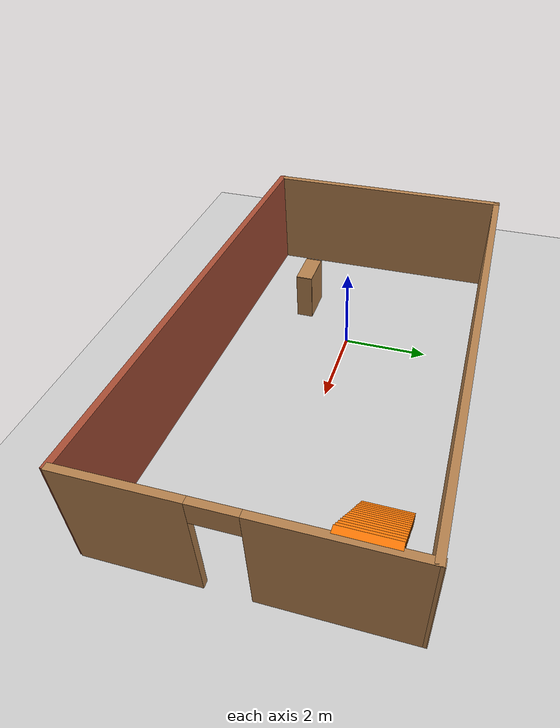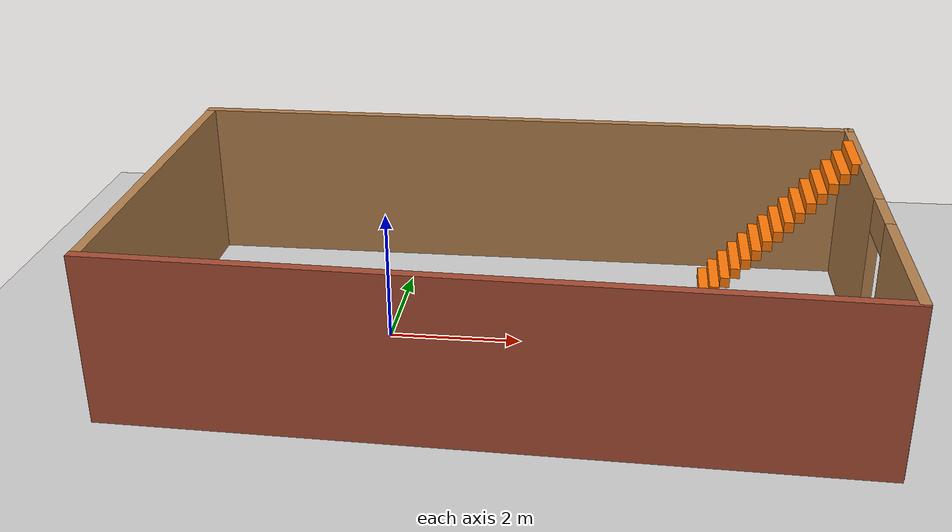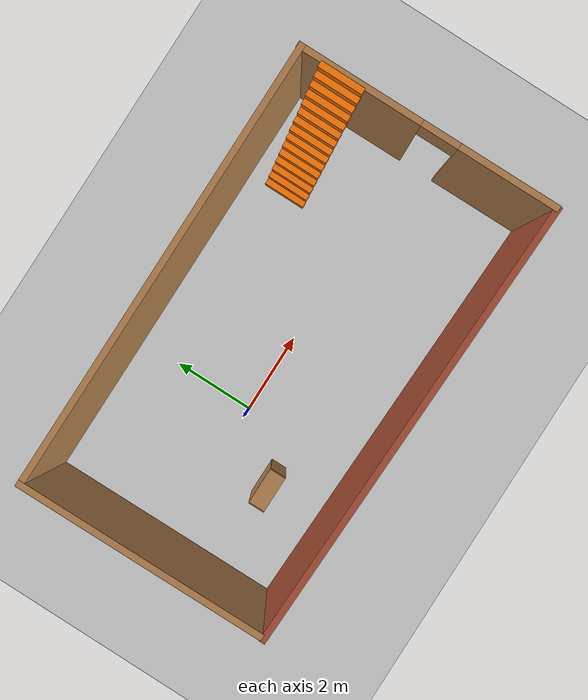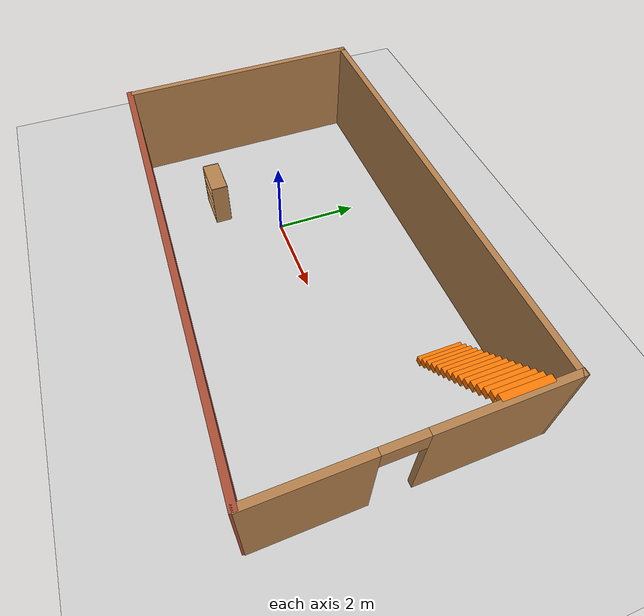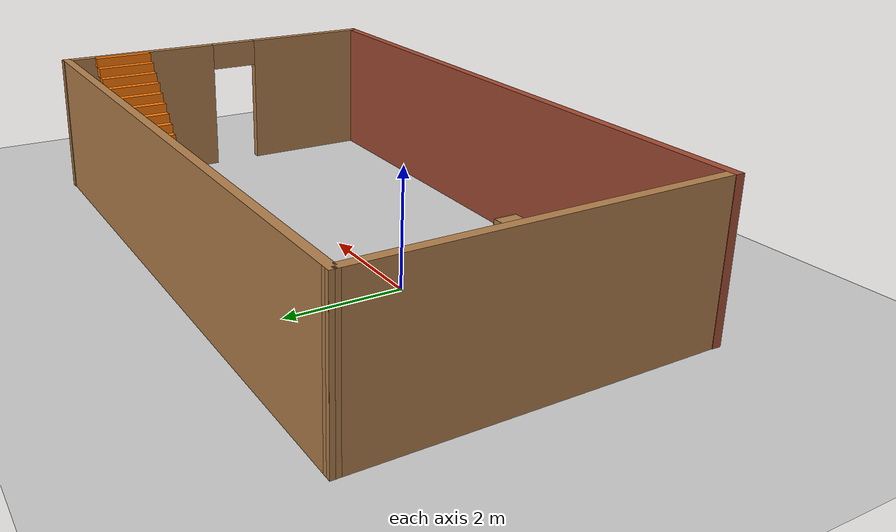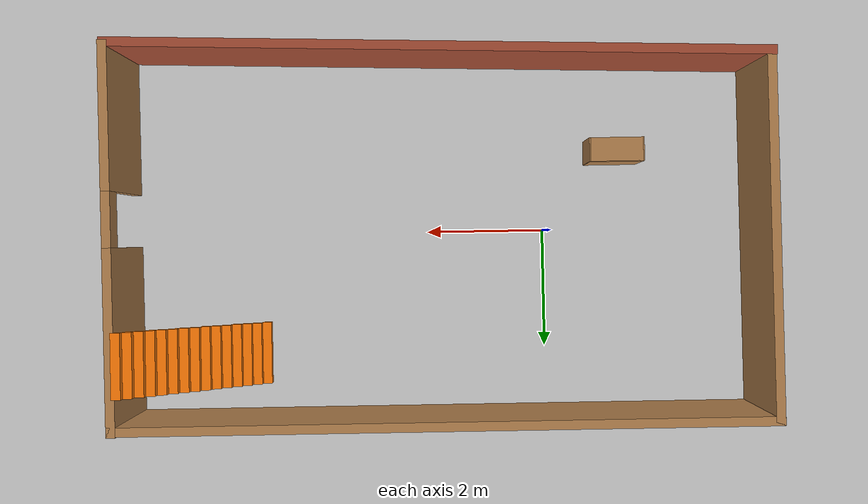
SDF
<sdf version="1.7">
 <world name="default">
  <light name="sun" type="directional">
   <pose>0 0 10 0 -0 0</pose>
   <diffuse>0.8 0.8 0.8 1</diffuse>
   <specular>0.2 0.2 0.2 1</specular>
   <attenuation>
    <range>1000</range>
    <constant>0.9</constant>
    <linear>0.01</linear>
    <quadratic>0.001</quadratic>
   </attenuation>
   <direction>-0.5 0.1 -0.9</direction>
   <spot><inner_angle>0</inner_angle><outer_angle>0</outer_angle><falloff>0</falloff></spot>
  </light>
  <model name="ground_plane">
   <static>1</static>
   <link name="link">
    <collision name="collision">
     <geometry><plane><normal>0 0 1</normal><size>100 100</size></plane></geometry>
     <surface>
      <contact><collide_bitmask>65535</collide_bitmask></contact>
      <friction><ode><mu>100</mu><mu2>50</mu2></ode></friction>
     </surface>
    </collision>
    <visual name="visual">
     <cast_shadows>0</cast_shadows>
     <geometry><plane><normal>0 0 1</normal><size>100 100</size></plane></geometry>
     <material>
      <script><uri>file://media/materials/scripts/gazebo.material</uri><name>Gazebo/Grey</name></script>
     </material>
    </visual>
   </link>
  </model>
  <gravity>0 0 -9.8</gravity>
  <magnetic_field>6e-06 2.3e-05 -4.2e-05</magnetic_field>
  <atmosphere type="adiabatic"/>
  <physics type="ode">
   <max_step_size>0.001</max_step_size>
   <real_time_factor>1</real_time_factor>
   <real_time_update_rate>1000</real_time_update_rate>
  </physics>
  <scene><ambient>0.4 0.4 0.4 1</ambient><background>0.7 0.7 0.7 1</background><shadows>1</shadows></scene>
  <audio><device>default</device></audio>
  <spherical_coordinates>
   <surface_model>EARTH_WGS84</surface_model>
   <latitude_deg>0</latitude_deg>
   <longitude_deg>0</longitude_deg>
   <elevation>0</elevation>
   <heading_deg>0</heading_deg>
  </spherical_coordinates>
  <model name="wall_test">
   <pose>1.76985 0.000121 0 0 -0 0</pose>
   <link name="Stairs_1">
    <visual name="Stairs_1_Visual_0">
     <pose>3.05585 2.04722 0.083333 0 -0 1.5708</pose>
     <geometry><box><size>1.06083 0.15222 0.166667</size></box></geometry>
     <material>
      <script><uri>file://media/materials/scripts/gazebo.material</uri><name>Gazebo/Grey</name></script>
      <ambient>0.996078 0.47451 0.0196078 1</ambient>
     </material>
     <meta><layer>0</layer></meta>
    </visual>
    <collision name="Stairs_1_Collision_0">
     <geometry><box><size>1.06083 0.15222 0.166667</size></box></geometry>
     <pose>3.05585 2.04722 0.083333 0 -0 1.5708</pose>
    </collision>
    <visual name="Stairs_1_Visual_1">
     <pose>3.20807 2.04722 0.25 0 -0 1.5708</pose>
     <geometry><box><size>1.06083 0.15222 0.166667</size></box></geometry>
     <material>
      <script><uri>file://media/materials/scripts/gazebo.material</uri><name>Gazebo/Grey</name></script>
      <ambient>0.996078 0.47451 0.0196078 1</ambient>
     </material>
     <meta><layer>0</layer></meta>
    </visual>
    <collision name="Stairs_1_Collision_1">
     <geometry><box><size>1.06083 0.15222 0.166667</size></box></geometry>
     <pose>3.20807 2.04722 0.25 0 -0 1.5708</pose>
    </collision>
    <visual name="Stairs_1_Visual_2">
     <pose>3.36029 2.04722 0.416667 0 -0 1.5708</pose>
     <geometry><box><size>1.06083 0.15222 0.166667</size></box></geometry>
     <material>
      <script><uri>file://media/materials/scripts/gazebo.material</uri><name>Gazebo/Grey</name></script>
      <ambient>0.996078 0.47451 0.0196078 1</ambient>
     </material>
     <meta><layer>0</layer></meta>
    </visual>
    <collision name="Stairs_1_Collision_2">
     <geometry><box><size>1.06083 0.15222 0.166667</size></box></geometry>
     <pose>3.36029 2.04722 0.416667 0 -0 1.5708</pose>
    </collision>
    <visual name="Stairs_1_Visual_3">
     <pose>3.51251 2.04722 0.583333 0 -0 1.5708</pose>
     <geometry><box><size>1.06083 0.15222 0.166667</size></box></geometry>
     <material>
      <script><uri>file://media/materials/scripts/gazebo.material</uri><name>Gazebo/Grey</name></script>
      <ambient>0.996078 0.47451 0.0196078 1</ambient>
     </material>
     <meta><layer>0</layer></meta>
    </visual>
    <collision name="Stairs_1_Collision_3">
     <geometry><box><size>1.06083 0.15222 0.166667</size></box></geometry>
     <pose>3.51251 2.04722 0.583333 0 -0 1.5708</pose>
    </collision>
    <visual name="Stairs_1_Visual_4">
     <pose>3.66473 2.04722 0.75 0 -0 1.5708</pose>
     <geometry><box><size>1.06083 0.15222 0.166667</size></box></geometry>
     <material>
      <script><uri>file://media/materials/scripts/gazebo.material</uri><name>Gazebo/Grey</name></script>
      <ambient>0.996078 0.47451 0.0196078 1</ambient>
     </material>
     <meta><layer>0</layer></meta>
    </visual>
    <collision name="Stairs_1_Collision_4">
     <geometry><box><size>1.06083 0.15222 0.166667</size></box></geometry>
     <pose>3.66473 2.04722 0.75 0 -0 1.5708</pose>
    </collision>
    <visual name="Stairs_1_Visual_5">
     <pose>3.81695 2.04722 0.916667 0 -0 1.5708</pose>
     <geometry><box><size>1.06083 0.15222 0.166667</size></box></geometry>
     <material>
      <script><uri>file://media/materials/scripts/gazebo.material</uri><name>Gazebo/Grey</name></script>
      <ambient>0.996078 0.47451 0.0196078 1</ambient>
     </material>
     <meta><layer>0</layer></meta>
    </visual>
    <collision name="Stairs_1_Collision_5">
     <geometry><box><size>1.06083 0.15222 0.166667</size></box></geometry>
     <pose>3.81695 2.04722 0.916667 0 -0 1.5708</pose>
    </collision>
    <visual name="Stairs_1_Visual_6">
     <pose>3.96917 2.04722 1.08333 0 -0 1.5708</pose>
     <geometry><box><size>1.06083 0.15222 0.166667</size></box></geometry>
     <material>
      <script><uri>file://media/materials/scripts/gazebo.material</uri><name>Gazebo/Grey</name></script>
      <ambient>0.996078 0.47451 0.0196078 1</ambient>
     </material>
     <meta><layer>0</layer></meta>
    </visual>
    <collision name="Stairs_1_Collision_6">
     <geometry><box><size>1.06083 0.15222 0.166667</size></box></geometry>
     <pose>3.96917 2.04722 1.08333 0 -0 1.5708</pose>
    </collision>
    <visual name="Stairs_1_Visual_7">
     <pose>4.12139 2.04722 1.25 0 -0 1.5708</pose>
     <geometry><box><size>1.06083 0.15222 0.166667</size></box></geometry>
     <material>
      <script><uri>file://media/materials/scripts/gazebo.material</uri><name>Gazebo/Grey</name></script>
      <ambient>0.996078 0.47451 0.0196078 1</ambient>
     </material>
     <meta><layer>0</layer></meta>
    </visual>
    <collision name="Stairs_1_Collision_7">
     <geometry><box><size>1.06083 0.15222 0.166667</size></box></geometry>
     <pose>4.12139 2.04722 1.25 0 -0 1.5708</pose>
    </collision>
    <visual name="Stairs_1_Visual_8">
     <pose>4.27361 2.04722 1.41667 0 -0 1.5708</pose>
     <geometry><box><size>1.06083 0.15222 0.166667</size></box></geometry>
     <material>
      <script><uri>file://media/materials/scripts/gazebo.material</uri><name>Gazebo/Grey</name></script>
      <ambient>0.996078 0.47451 0.0196078 1</ambient>
     </material>
     <meta><layer>0</layer></meta>
    </visual>
    <collision name="Stairs_1_Collision_8">
     <geometry><box><size>1.06083 0.15222 0.166667</size></box></geometry>
     <pose>4.27361 2.04722 1.41667 0 -0 1.5708</pose>
    </collision>
    <visual name="Stairs_1_Visual_9">
     <pose>4.42583 2.04722 1.58333 0 -0 1.5708</pose>
     <geometry><box><size>1.06083 0.15222 0.166667</size></box></geometry>
     <material>
      <script><uri>file://media/materials/scripts/gazebo.material</uri><name>Gazebo/Grey</name></script>
      <ambient>0.996078 0.47451 0.0196078 1</ambient>
     </material>
     <meta><layer>0</layer></meta>
    </visual>
    <collision name="Stairs_1_Collision_9">
     <geometry><box><size>1.06083 0.15222 0.166667</size></box></geometry>
     <pose>4.42583 2.04722 1.58333 0 -0 1.5708</pose>
    </collision>
    <visual name="Stairs_1_Visual_10">
     <pose>4.57805 2.04722 1.75 0 -0 1.5708</pose>
     <geometry><box><size>1.06083 0.15222 0.166667</size></box></geometry>
     <material>
      <script><uri>file://media/materials/scripts/gazebo.material</uri><name>Gazebo/Grey</name></script>
      <ambient>0.996078 0.47451 0.0196078 1</ambient>
     </material>
     <meta><layer>0</layer></meta>
    </visual>
    <collision name="Stairs_1_Collision_10">
     <geometry><box><size>1.06083 0.15222 0.166667</size></box></geometry>
     <pose>4.57805 2.04722 1.75 0 -0 1.5708</pose>
    </collision>
    <visual name="Stairs_1_Visual_11">
     <pose>4.73027 2.04722 1.91667 0 -0 1.5708</pose>
     <geometry><box><size>1.06083 0.15222 0.166667</size></box></geometry>
     <material>
      <script><uri>file://media/materials/scripts/gazebo.material</uri><name>Gazebo/Grey</name></script>
      <ambient>0.996078 0.47451 0.0196078 1</ambient>
     </material>
     <meta><layer>0</layer></meta>
    </visual>
    <collision name="Stairs_1_Collision_11">
     <geometry><box><size>1.06083 0.15222 0.166667</size></box></geometry>
     <pose>4.73027 2.04722 1.91667 0 -0 1.5708</pose>
    </collision>
    <visual name="Stairs_1_Visual_12">
     <pose>4.88249 2.04722 2.08333 0 -0 1.5708</pose>
     <geometry><box><size>1.06083 0.15222 0.166667</size></box></geometry>
     <material>
      <script><uri>file://media/materials/scripts/gazebo.material</uri><name>Gazebo/Grey</name></script>
      <ambient>0.996078 0.47451 0.0196078 1</ambient>
     </material>
     <meta><layer>0</layer></meta>
    </visual>
    <collision name="Stairs_1_Collision_12">
     <geometry><box><size>1.06083 0.15222 0.166667</size></box></geometry>
     <pose>4.88249 2.04722 2.08333 0 -0 1.5708</pose>
    </collision>
    <visual name="Stairs_1_Visual_13">
     <pose>5.03471 2.04722 2.25 0 -0 1.5708</pose>
     <geometry><box><size>1.06083 0.15222 0.166667</size></box></geometry>
     <material>
      <script><uri>file://media/materials/scripts/gazebo.material</uri><name>Gazebo/Grey</name></script>
      <ambient>0.996078 0.47451 0.0196078 1</ambient>
     </material>
     <meta><layer>0</layer></meta>
    </visual>
    <collision name="Stairs_1_Collision_13">
     <geometry><box><size>1.06083 0.15222 0.166667</size></box></geometry>
     <pose>5.03471 2.04722 2.25 0 -0 1.5708</pose>
    </collision>
    <visual name="Stairs_1_Visual_14">
     <pose>5.18693 2.04722 2.41667 0 -0 1.5708</pose>
     <geometry><box><size>1.06083 0.15222 0.166667</size></box></geometry>
     <material>
      <script><uri>file://media/materials/scripts/gazebo.material</uri><name>Gazebo/Grey</name></script>
      <ambient>0.996078 0.47451 0.0196078 1</ambient>
     </material>
     <meta><layer>0</layer></meta>
    </visual>
    <collision name="Stairs_1_Collision_14">
     <geometry><box><size>1.06083 0.15222 0.166667</size></box></geometry>
     <pose>5.18693 2.04722 2.41667 0 -0 1.5708</pose>
    </collision>
   </link>
   <link name="Wall_0">
    <collision name="Wall_0_Collision">
     <geometry><box><size>5.91706 0.15 2.5</size></box></geometry>
     <pose>0 0 1.25 0 -0 0</pose>
    </collision>
    <visual name="Wall_0_Visual">
     <pose>0 0 1.25 0 -0 0</pose>
     <geometry><box><size>5.91706 0.15 2.5</size></box></geometry>
     <material>
      <script><uri>file://media/materials/scripts/gazebo.material</uri><name>Gazebo/Wood</name></script>
      <ambient>1 1 1 1</ambient>
     </material>
     <meta><layer>0</layer></meta>
    </visual>
    <pose>-5.30012 0.203339 0 0 -0 1.57783</pose>
   </link>
   <link name="Wall_1">
    <collision name="Wall_1_Collision">
     <geometry><box><size>10.75 0.15 2.5</size></box></geometry>
     <pose>0 0 1.25 0 -0 0</pose>
    </collision>
    <visual name="Wall_1_Visual">
     <pose>0 0 1.25 0 -0 0</pose>
     <geometry><box><size>10.75 0.15 2.5</size></box></geometry>
     <material>
      <script><uri>file://media/materials/scripts/gazebo.material</uri><name>Gazebo/Wood</name></script>
      <ambient>0.996078 0.47451 0.0196078 1</ambient>
     </material>
     <meta><layer>0</layer></meta>
    </visual>
    <pose>-0.020402 3.0868 0 0 -0 0</pose>
   </link>
   <link name="Wall_2">
    <pose>5.30002 0.023647 0 0 -0 -1.56416</pose>
    <visual name="Wall_2_Visual_0">
     <pose>-1.6494 0 1.25 0 -0 0</pose>
     <geometry><box><size>3.00805 0.15 2.5</size></box></geometry>
     <material>
      <script><uri>file://media/materials/scripts/gazebo.material</uri><name>Gazebo/Wood</name></script>
      <ambient>1 1 1 1</ambient>
     </material>
     <meta><layer>0</layer></meta>
    </visual>
    <collision name="Wall_2_Collision_0">
     <geometry><box><size>3.00805 0.15 2.5</size></box></geometry>
     <pose>-1.6494 0 1.25 0 -0 0</pose>
    </collision>
    <visual name="Wall_2_Visual_1">
     <pose>1.95403 0 1.25 0 -0 0</pose>
     <geometry><box><size>2.3988 0.15 2.5</size></box></geometry>
     <material>
      <script><uri>file://media/materials/scripts/gazebo.material</uri><name>Gazebo/Wood</name></script>
      <ambient>1 1 1 1</ambient>
     </material>
     <meta><layer>0</layer></meta>
    </visual>
    <collision name="Wall_2_Collision_1">
     <geometry><box><size>2.3988 0.15 2.5</size></box></geometry>
     <pose>1.95403 0 1.25 0 -0 0</pose>
    </collision>
    <visual name="Wall_2_Visual_2">
     <pose>0.304625 0 2.25 0 -0 0</pose>
     <geometry><box><size>0.9 0.15 0.5</size></box></geometry>
     <material>
      <script><uri>file://media/materials/scripts/gazebo.material</uri><name>Gazebo/Wood</name></script>
      <ambient>1 1 1 1</ambient>
     </material>
     <meta><layer>0</layer></meta>
    </visual>
    <collision name="Wall_2_Collision_2">
     <geometry><box><size>0.9 0.15 0.5</size></box></geometry>
     <pose>0.304625 0 2.25 0 -0 0</pose>
    </collision>
   </link>
   <link name="Wall_3">
    <collision name="Wall_3_Collision">
     <geometry><box><size>10.7496 0.15 2.5</size></box></geometry>
     <pose>0 0 1.25 0 -0 0</pose>
    </collision>
    <visual name="Wall_3_Visual">
     <pose>0 0 1.25 0 -0 0</pose>
     <geometry><box><size>10.7496 0.15 2.5</size></box></geometry>
     <material>
      <script><uri>file://media/materials/scripts/gazebo.material</uri><name>Gazebo/Bricks</name></script>
      <ambient>1 1 1 1</ambient>
     </material>
     <meta><layer>0</layer></meta>
    </visual>
    <pose>0.007689 -2.94523 0 0 -0 3.11232</pose>
   </link>
   <static>1</static>
  </model>
  <model name="bookshelf_clone">
   <static>1</static>
   <link name="link">
    <inertial><mass>1</mass></inertial>
    <collision name="back">
     <pose>0 0.005 0.6 0 -0 0</pose>
     <geometry><box><size>0.9 0.01 1.2</size></box></geometry>
    </collision>
    <visual name="visual1">
     <pose>0 0.005 0.6 0 -0 0</pose>
     <geometry><box><size>0.9 0.01 1.2</size></box></geometry>
     <material>
      <script><uri>file://media/materials/scripts/gazebo.material</uri><name>Gazebo/Wood</name></script>
     </material>
    </visual>
    <collision name="left_side">
     <pose>0.45 -0.195 0.6 0 -0 0</pose>
     <geometry><box><size>0.02 0.4 1.2</size></box></geometry>
    </collision>
    <visual name="visual2">
     <pose>0.45 -0.195 0.6 0 -0 0</pose>
     <geometry><box><size>0.02 0.4 1.2</size></box></geometry>
     <material>
      <script><uri>file://media/materials/scripts/gazebo.material</uri><name>Gazebo/Wood</name></script>
     </material>
    </visual>
    <collision name="right_side">
     <pose>-0.45 -0.195 0.6 0 -0 0</pose>
     <geometry><box><size>0.02 0.4 1.2</size></box></geometry>
    </collision>
    <visual name="visual3">
     <pose>-0.45 -0.195 0.6 0 -0 0</pose>
     <geometry><box><size>0.02 0.4 1.2</size></box></geometry>
     <material>
      <script><uri>file://media/materials/scripts/gazebo.material</uri><name>Gazebo/Wood</name></script>
     </material>
    </visual>
    <collision name="bottom">
     <pose>0 -0.195 0.03 0 -0 0</pose>
     <geometry><box><size>0.88 0.4 0.06</size></box></geometry>
    </collision>
    <visual name="visual4">
     <pose>0 -0.195 0.03 0 -0 0</pose>
     <geometry><box><size>0.88 0.4 0.06</size></box></geometry>
     <material>
      <script><uri>file://media/materials/scripts/gazebo.material</uri><name>Gazebo/Wood</name></script>
     </material>
    </visual>
    <collision name="top">
     <pose>0 -0.195 1.19 0 -0 0</pose>
     <geometry><box><size>0.88 0.4 0.02</size></box></geometry>
    </collision>
    <visual name="visual5">
     <pose>0 -0.195 1.19 0 -0 0</pose>
     <geometry><box><size>0.88 0.4 0.02</size></box></geometry>
     <material>
      <script><uri>file://media/materials/scripts/gazebo.material</uri><name>Gazebo/Wood</name></script>
     </material>
    </visual>
    <collision name="low_shelf">
     <pose>0 -0.195 0.43 0 -0 0</pose>
     <geometry><box><size>0.88 0.4 0.02</size></box></geometry>
    </collision>
    <visual name="visual6">
     <pose>0 -0.195 0.43 0 -0 0</pose>
     <geometry><box><size>0.88 0.4 0.02</size></box></geometry>
     <material>
      <script><uri>file://media/materials/scripts/gazebo.material</uri><name>Gazebo/Wood</name></script>
     </material>
    </visual>
    <collision name="high_shelf">
     <pose>0 -0.195 0.8 0 -0 0</pose>
     <geometry><box><size>0.88 0.4 0.02</size></box></geometry>
    </collision>
    <visual name="visual7">
     <pose>0 -0.195 0.8 0 -0 0</pose>
     <geometry><box><size>0.88 0.4 0.02</size></box></geometry>
     <material>
      <script><uri>file://media/materials/scripts/gazebo.material</uri><name>Gazebo/Wood</name></script>
     </material>
    </visual>
   </link>
   <pose>-1.19005 -1.13687 0 0 -0 0</pose>
  </model>
 </world>
</sdf>
